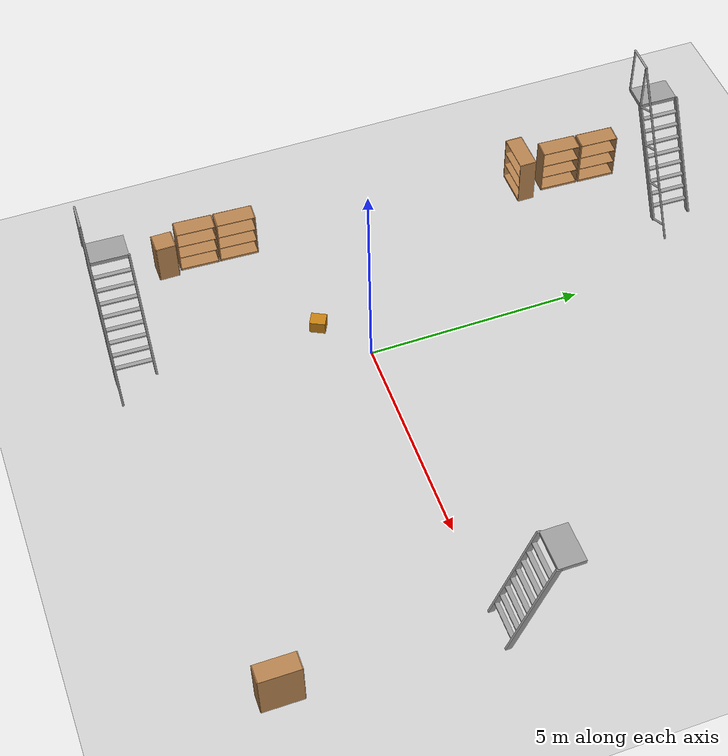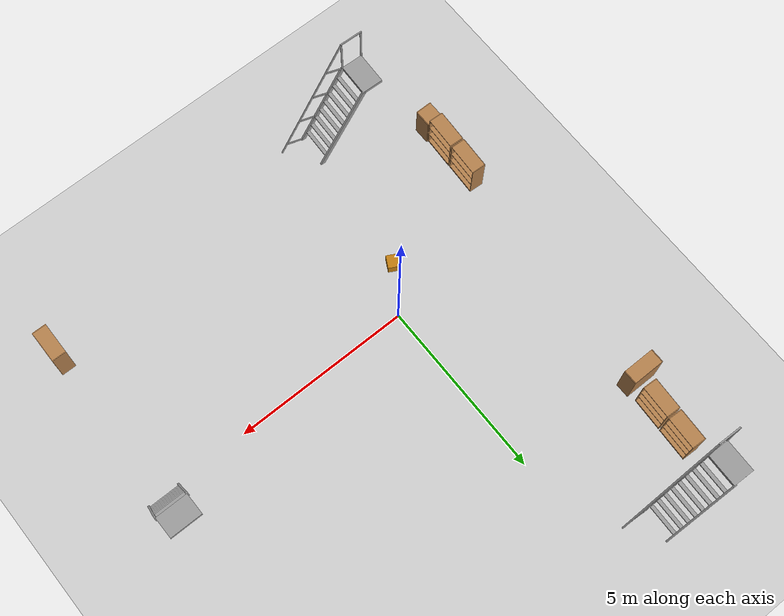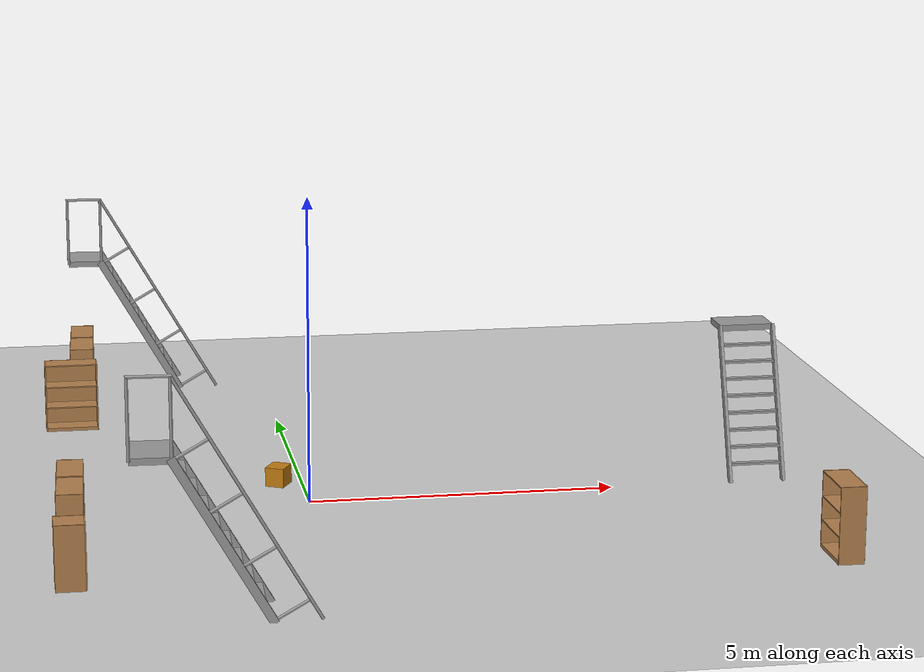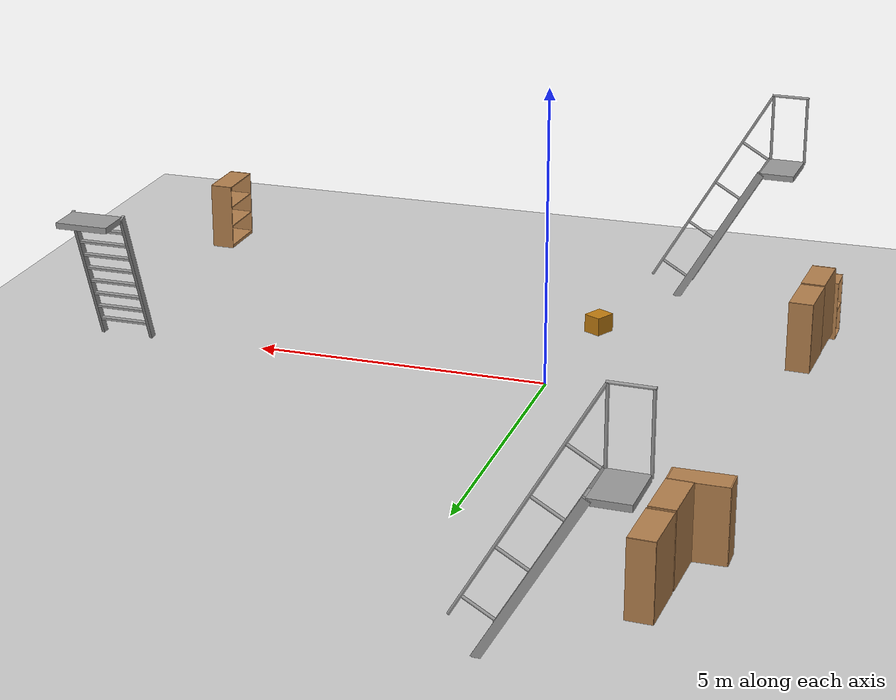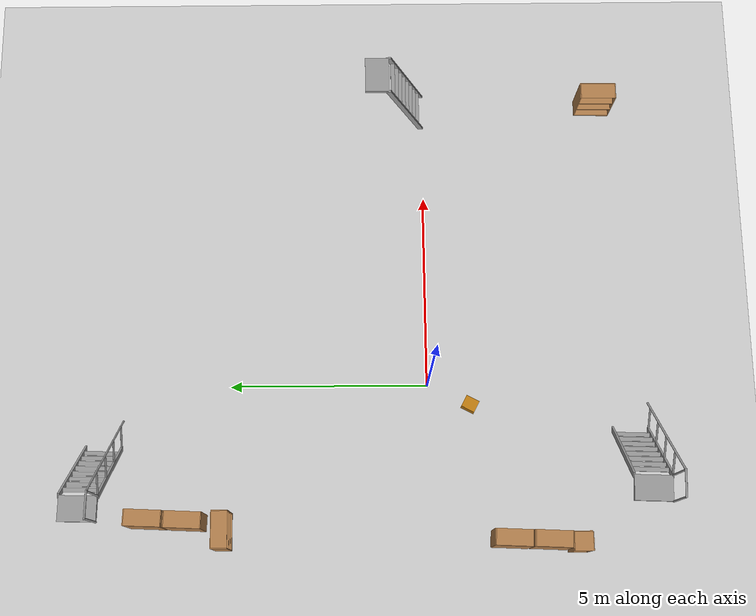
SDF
<sdf version="1.7">
 <world name="default">
  <light name="sun" type="directional">
   <pose>0 0 10 0 -0 0</pose>
   <diffuse>0.8 0.8 0.8 1</diffuse>
   <specular>0.2 0.2 0.2 1</specular>
   <attenuation>
    <range>1000</range>
    <constant>0.9</constant>
    <linear>0.01</linear>
    <quadratic>0.001</quadratic>
   </attenuation>
   <direction>-0.5 0.1 -0.9</direction>
   <spot><inner_angle>0</inner_angle><outer_angle>0</outer_angle><falloff>0</falloff></spot>
  </light>
  <model name="ground_plane">
   <static>1</static>
   <link name="link">
    <collision name="collision">
     <geometry><plane><normal>0 0 1</normal><size>100 100</size></plane></geometry>
     <surface>
      <contact><collide_bitmask>65535</collide_bitmask></contact>
      <friction><ode><mu>100</mu><mu2>50</mu2></ode></friction>
     </surface>
    </collision>
    <visual name="visual">
     <cast_shadows>0</cast_shadows>
     <geometry><plane><normal>0 0 1</normal><size>100 100</size></plane></geometry>
     <material>
      <script><uri>file://media/materials/scripts/gazebo.material</uri><name>Gazebo/Grey</name></script>
     </material>
    </visual>
   </link>
  </model>
  <gravity>0 0 -9.8</gravity>
  <magnetic_field>6e-06 2.3e-05 -4.2e-05</magnetic_field>
  <atmosphere type="adiabatic"/>
  <physics type="ode">
   <max_step_size>0.001</max_step_size>
   <real_time_factor>1</real_time_factor>
   <real_time_update_rate>1000</real_time_update_rate>
  </physics>
  <scene><ambient>0.4 0.4 0.4 1</ambient><background>0.7 0.7 0.7 1</background><shadows>1</shadows></scene>
  <spherical_coordinates>
   <surface_model>EARTH_WGS84</surface_model>
   <latitude_deg>0</latitude_deg>
   <longitude_deg>0</longitude_deg>
   <elevation>0</elevation>
   <heading_deg>0</heading_deg>
  </spherical_coordinates>
  <model name="cabinet">
   <static>1</static>
   <link name="cabinet_bottom_plate">
    <inertial>
     <pose>0 0 -1 0 -0 0</pose>
     <inertia><ixx>2.05</ixx><ixy>0</ixy><ixz>0</ixz><iyy>2.05</iyy><iyz>0</iyz><izz>2.05</izz></inertia>
     <mass>25</mass>
    </inertial>
    <collision name="cabinet_bottom_plate_geom">
     <pose>0 0 0.01 0 -0 0</pose>
     <geometry><box><size>0.45 0.45 0.02</size></box></geometry>
    </collision>
    <visual name="cabinet_bottom_plate_geom_visual">
     <pose>0 0 0.01 0 -0 0</pose>
     <geometry><box><size>0.45 0.45 0.02</size></box></geometry>
     <material>
      <script><uri>file://media/materials/scripts/gazebo.material</uri><name>Gazebo/Wood</name></script>
     </material>
    </visual>
    <collision name="cabinet_bottom_plate_geom_cabinet_back_plate">
     <pose>0.235 0 0.51 0 -0 0</pose>
     <geometry><box><size>0.02 0.45 1.02</size></box></geometry>
    </collision>
    <visual name="cabinet_bottom_plate_geom_cabinet_back_plate_visual">
     <pose>0.235 0 0.51 0 -0 0</pose>
     <geometry><box><size>0.02 0.45 1.02</size></box></geometry>
     <material>
      <script><uri>file://media/materials/scripts/gazebo.material</uri><name>Gazebo/Wood</name></script>
     </material>
    </visual>
    <collision name="cabinet_bottom_plate_geom_cabinet_left_plate">
     <pose>0 0.235 0.51 0 -0 0</pose>
     <geometry><box><size>0.45 0.02 1.02</size></box></geometry>
    </collision>
    <visual name="cabinet_bottom_plate_geom_cabinet_left_plate_visual">
     <pose>0 0.235 0.51 0 -0 0</pose>
     <geometry><box><size>0.45 0.02 1.02</size></box></geometry>
     <material>
      <script><uri>file://media/materials/scripts/gazebo.material</uri><name>Gazebo/Wood</name></script>
     </material>
    </visual>
    <collision name="cabinet_bottom_plate_geom_cabinet_middle_plate">
     <pose>0 0 0.51 0 -0 0</pose>
     <geometry><box><size>0.45 0.45 0.02</size></box></geometry>
    </collision>
    <visual name="cabinet_bottom_plate_geom_cabinet_middle_plate_visual">
     <pose>0 0 0.51 0 -0 0</pose>
     <geometry><box><size>0.45 0.45 0.02</size></box></geometry>
     <material>
      <script><uri>file://media/materials/scripts/gazebo.material</uri><name>Gazebo/Wood</name></script>
     </material>
    </visual>
    <collision name="cabinet_bottom_plate_geom_cabinet_right_plate">
     <pose>0 -0.235 0.51 0 -0 0</pose>
     <geometry><box><size>0.45 0.02 1.02</size></box></geometry>
    </collision>
    <visual name="cabinet_bottom_plate_geom_cabinet_right_plate_visual">
     <pose>0 -0.235 0.51 0 -0 0</pose>
     <geometry><box><size>0.45 0.02 1.02</size></box></geometry>
     <material>
      <script><uri>file://media/materials/scripts/gazebo.material</uri><name>Gazebo/Wood</name></script>
     </material>
    </visual>
    <collision name="cabinet_bottom_plate_geom_cabinet_top_plate">
     <pose>0 0 1.01 0 -0 0</pose>
     <geometry><box><size>0.45 0.45 0.02</size></box></geometry>
    </collision>
    <visual name="cabinet_bottom_plate_geom_cabinet_top_plate_visual">
     <pose>0 0 1.01 0 -0 0</pose>
     <geometry><box><size>0.45 0.45 0.02</size></box></geometry>
     <material>
      <script><uri>file://media/materials/scripts/gazebo.material</uri><name>Gazebo/Wood</name></script>
     </material>
    </visual>
   </link>
   <pose>-3.98072 -3.63785 0 0 -0 0</pose>
  </model>
  <model name="bookshelf_clone">
   <static>1</static>
   <link name="link">
    <inertial><mass>1</mass></inertial>
    <collision name="back">
     <pose>0 0.005 0.6 0 -0 0</pose>
     <geometry><box><size>0.9 0.01 1.2</size></box></geometry>
    </collision>
    <visual name="visual1">
     <pose>0 0.005 0.6 0 -0 0</pose>
     <geometry><box><size>0.9 0.01 1.2</size></box></geometry>
     <material>
      <script><uri>file://media/materials/scripts/gazebo.material</uri><name>Gazebo/Wood</name></script>
     </material>
    </visual>
    <collision name="left_side">
     <pose>0.45 -0.195 0.6 0 -0 0</pose>
     <geometry><box><size>0.02 0.4 1.2</size></box></geometry>
    </collision>
    <visual name="visual2">
     <pose>0.45 -0.195 0.6 0 -0 0</pose>
     <geometry><box><size>0.02 0.4 1.2</size></box></geometry>
     <material>
      <script><uri>file://media/materials/scripts/gazebo.material</uri><name>Gazebo/Wood</name></script>
     </material>
    </visual>
    <collision name="right_side">
     <pose>-0.45 -0.195 0.6 0 -0 0</pose>
     <geometry><box><size>0.02 0.4 1.2</size></box></geometry>
    </collision>
    <visual name="visual3">
     <pose>-0.45 -0.195 0.6 0 -0 0</pose>
     <geometry><box><size>0.02 0.4 1.2</size></box></geometry>
     <material>
      <script><uri>file://media/materials/scripts/gazebo.material</uri><name>Gazebo/Wood</name></script>
     </material>
    </visual>
    <collision name="bottom">
     <pose>0 -0.195 0.03 0 -0 0</pose>
     <geometry><box><size>0.88 0.4 0.06</size></box></geometry>
    </collision>
    <visual name="visual4">
     <pose>0 -0.195 0.03 0 -0 0</pose>
     <geometry><box><size>0.88 0.4 0.06</size></box></geometry>
     <material>
      <script><uri>file://media/materials/scripts/gazebo.material</uri><name>Gazebo/Wood</name></script>
     </material>
    </visual>
    <collision name="top">
     <pose>0 -0.195 1.19 0 -0 0</pose>
     <geometry><box><size>0.88 0.4 0.02</size></box></geometry>
    </collision>
    <visual name="visual5">
     <pose>0 -0.195 1.19 0 -0 0</pose>
     <geometry><box><size>0.88 0.4 0.02</size></box></geometry>
     <material>
      <script><uri>file://media/materials/scripts/gazebo.material</uri><name>Gazebo/Wood</name></script>
     </material>
    </visual>
    <collision name="low_shelf">
     <pose>0 -0.195 0.43 0 -0 0</pose>
     <geometry><box><size>0.88 0.4 0.02</size></box></geometry>
    </collision>
    <visual name="visual6">
     <pose>0 -0.195 0.43 0 -0 0</pose>
     <geometry><box><size>0.88 0.4 0.02</size></box></geometry>
     <material>
      <script><uri>file://media/materials/scripts/gazebo.material</uri><name>Gazebo/Wood</name></script>
     </material>
    </visual>
    <collision name="high_shelf">
     <pose>0 -0.195 0.8 0 -0 0</pose>
     <geometry><box><size>0.88 0.4 0.02</size></box></geometry>
    </collision>
    <visual name="visual7">
     <pose>0 -0.195 0.8 0 -0 0</pose>
     <geometry><box><size>0.88 0.4 0.02</size></box></geometry>
     <material>
      <script><uri>file://media/materials/scripts/gazebo.material</uri><name>Gazebo/Wood</name></script>
     </material>
    </visual>
   </link>
   <pose>-3.59991 5.99172 0.120777 0 -0 1.52399</pose>
  </model>
  <model name="bookshelf_clone_0">
   <static>1</static>
   <link name="link">
    <inertial><mass>1</mass></inertial>
    <collision name="back">
     <pose>0 0.005 0.6 0 -0 0</pose>
     <geometry><box><size>0.9 0.01 1.2</size></box></geometry>
    </collision>
    <visual name="visual1">
     <pose>0 0.005 0.6 0 -0 0</pose>
     <geometry><box><size>0.9 0.01 1.2</size></box></geometry>
     <material>
      <script><uri>file://media/materials/scripts/gazebo.material</uri><name>Gazebo/Wood</name></script>
     </material>
    </visual>
    <collision name="left_side">
     <pose>0.45 -0.195 0.6 0 -0 0</pose>
     <geometry><box><size>0.02 0.4 1.2</size></box></geometry>
    </collision>
    <visual name="visual2">
     <pose>0.45 -0.195 0.6 0 -0 0</pose>
     <geometry><box><size>0.02 0.4 1.2</size></box></geometry>
     <material>
      <script><uri>file://media/materials/scripts/gazebo.material</uri><name>Gazebo/Wood</name></script>
     </material>
    </visual>
    <collision name="right_side">
     <pose>-0.45 -0.195 0.6 0 -0 0</pose>
     <geometry><box><size>0.02 0.4 1.2</size></box></geometry>
    </collision>
    <visual name="visual3">
     <pose>-0.45 -0.195 0.6 0 -0 0</pose>
     <geometry><box><size>0.02 0.4 1.2</size></box></geometry>
     <material>
      <script><uri>file://media/materials/scripts/gazebo.material</uri><name>Gazebo/Wood</name></script>
     </material>
    </visual>
    <collision name="bottom">
     <pose>0 -0.195 0.03 0 -0 0</pose>
     <geometry><box><size>0.88 0.4 0.06</size></box></geometry>
    </collision>
    <visual name="visual4">
     <pose>0 -0.195 0.03 0 -0 0</pose>
     <geometry><box><size>0.88 0.4 0.06</size></box></geometry>
     <material>
      <script><uri>file://media/materials/scripts/gazebo.material</uri><name>Gazebo/Wood</name></script>
     </material>
    </visual>
    <collision name="top">
     <pose>0 -0.195 1.19 0 -0 0</pose>
     <geometry><box><size>0.88 0.4 0.02</size></box></geometry>
    </collision>
    <visual name="visual5">
     <pose>0 -0.195 1.19 0 -0 0</pose>
     <geometry><box><size>0.88 0.4 0.02</size></box></geometry>
     <material>
      <script><uri>file://media/materials/scripts/gazebo.material</uri><name>Gazebo/Wood</name></script>
     </material>
    </visual>
    <collision name="low_shelf">
     <pose>0 -0.195 0.43 0 -0 0</pose>
     <geometry><box><size>0.88 0.4 0.02</size></box></geometry>
    </collision>
    <visual name="visual6">
     <pose>0 -0.195 0.43 0 -0 0</pose>
     <geometry><box><size>0.88 0.4 0.02</size></box></geometry>
     <material>
      <script><uri>file://media/materials/scripts/gazebo.material</uri><name>Gazebo/Wood</name></script>
     </material>
    </visual>
    <collision name="high_shelf">
     <pose>0 -0.195 0.8 0 -0 0</pose>
     <geometry><box><size>0.88 0.4 0.02</size></box></geometry>
    </collision>
    <visual name="visual7">
     <pose>0 -0.195 0.8 0 -0 0</pose>
     <geometry><box><size>0.88 0.4 0.02</size></box></geometry>
     <material>
      <script><uri>file://media/materials/scripts/gazebo.material</uri><name>Gazebo/Wood</name></script>
     </material>
    </visual>
   </link>
   <pose>-3.55264 6.9466 0.120777 0 -0 1.52399</pose>
  </model>
  <model name="bookshelf_clone_1">
   <static>1</static>
   <link name="link">
    <inertial><mass>1</mass></inertial>
    <collision name="back">
     <pose>0 0.005 0.6 0 -0 0</pose>
     <geometry><box><size>0.9 0.01 1.2</size></box></geometry>
    </collision>
    <visual name="visual1">
     <pose>0 0.005 0.6 0 -0 0</pose>
     <geometry><box><size>0.9 0.01 1.2</size></box></geometry>
     <material>
      <script><uri>file://media/materials/scripts/gazebo.material</uri><name>Gazebo/Wood</name></script>
     </material>
    </visual>
    <collision name="left_side">
     <pose>0.45 -0.195 0.6 0 -0 0</pose>
     <geometry><box><size>0.02 0.4 1.2</size></box></geometry>
    </collision>
    <visual name="visual2">
     <pose>0.45 -0.195 0.6 0 -0 0</pose>
     <geometry><box><size>0.02 0.4 1.2</size></box></geometry>
     <material>
      <script><uri>file://media/materials/scripts/gazebo.material</uri><name>Gazebo/Wood</name></script>
     </material>
    </visual>
    <collision name="right_side">
     <pose>-0.45 -0.195 0.6 0 -0 0</pose>
     <geometry><box><size>0.02 0.4 1.2</size></box></geometry>
    </collision>
    <visual name="visual3">
     <pose>-0.45 -0.195 0.6 0 -0 0</pose>
     <geometry><box><size>0.02 0.4 1.2</size></box></geometry>
     <material>
      <script><uri>file://media/materials/scripts/gazebo.material</uri><name>Gazebo/Wood</name></script>
     </material>
    </visual>
    <collision name="bottom">
     <pose>0 -0.195 0.03 0 -0 0</pose>
     <geometry><box><size>0.88 0.4 0.06</size></box></geometry>
    </collision>
    <visual name="visual4">
     <pose>0 -0.195 0.03 0 -0 0</pose>
     <geometry><box><size>0.88 0.4 0.06</size></box></geometry>
     <material>
      <script><uri>file://media/materials/scripts/gazebo.material</uri><name>Gazebo/Wood</name></script>
     </material>
    </visual>
    <collision name="top">
     <pose>0 -0.195 1.19 0 -0 0</pose>
     <geometry><box><size>0.88 0.4 0.02</size></box></geometry>
    </collision>
    <visual name="visual5">
     <pose>0 -0.195 1.19 0 -0 0</pose>
     <geometry><box><size>0.88 0.4 0.02</size></box></geometry>
     <material>
      <script><uri>file://media/materials/scripts/gazebo.material</uri><name>Gazebo/Wood</name></script>
     </material>
    </visual>
    <collision name="low_shelf">
     <pose>0 -0.195 0.43 0 -0 0</pose>
     <geometry><box><size>0.88 0.4 0.02</size></box></geometry>
    </collision>
    <visual name="visual6">
     <pose>0 -0.195 0.43 0 -0 0</pose>
     <geometry><box><size>0.88 0.4 0.02</size></box></geometry>
     <material>
      <script><uri>file://media/materials/scripts/gazebo.material</uri><name>Gazebo/Wood</name></script>
     </material>
    </visual>
    <collision name="high_shelf">
     <pose>0 -0.195 0.8 0 -0 0</pose>
     <geometry><box><size>0.88 0.4 0.02</size></box></geometry>
    </collision>
    <visual name="visual7">
     <pose>0 -0.195 0.8 0 -0 0</pose>
     <geometry><box><size>0.88 0.4 0.02</size></box></geometry>
     <material>
      <script><uri>file://media/materials/scripts/gazebo.material</uri><name>Gazebo/Wood</name></script>
     </material>
    </visual>
   </link>
   <pose>-4.12272 -2.8839 0.120777 0 -0 1.52399</pose>
  </model>
  <model name="bookshelf_clone_2">
   <static>1</static>
   <link name="link">
    <inertial><mass>1</mass></inertial>
    <collision name="back">
     <pose>0 0.005 0.6 0 -0 0</pose>
     <geometry><box><size>0.9 0.01 1.2</size></box></geometry>
    </collision>
    <visual name="visual1">
     <pose>0 0.005 0.6 0 -0 0</pose>
     <geometry><box><size>0.9 0.01 1.2</size></box></geometry>
     <material>
      <script><uri>file://media/materials/scripts/gazebo.material</uri><name>Gazebo/Wood</name></script>
     </material>
    </visual>
    <collision name="left_side">
     <pose>0.45 -0.195 0.6 0 -0 0</pose>
     <geometry><box><size>0.02 0.4 1.2</size></box></geometry>
    </collision>
    <visual name="visual2">
     <pose>0.45 -0.195 0.6 0 -0 0</pose>
     <geometry><box><size>0.02 0.4 1.2</size></box></geometry>
     <material>
      <script><uri>file://media/materials/scripts/gazebo.material</uri><name>Gazebo/Wood</name></script>
     </material>
    </visual>
    <collision name="right_side">
     <pose>-0.45 -0.195 0.6 0 -0 0</pose>
     <geometry><box><size>0.02 0.4 1.2</size></box></geometry>
    </collision>
    <visual name="visual3">
     <pose>-0.45 -0.195 0.6 0 -0 0</pose>
     <geometry><box><size>0.02 0.4 1.2</size></box></geometry>
     <material>
      <script><uri>file://media/materials/scripts/gazebo.material</uri><name>Gazebo/Wood</name></script>
     </material>
    </visual>
    <collision name="bottom">
     <pose>0 -0.195 0.03 0 -0 0</pose>
     <geometry><box><size>0.88 0.4 0.06</size></box></geometry>
    </collision>
    <visual name="visual4">
     <pose>0 -0.195 0.03 0 -0 0</pose>
     <geometry><box><size>0.88 0.4 0.06</size></box></geometry>
     <material>
      <script><uri>file://media/materials/scripts/gazebo.material</uri><name>Gazebo/Wood</name></script>
     </material>
    </visual>
    <collision name="top">
     <pose>0 -0.195 1.19 0 -0 0</pose>
     <geometry><box><size>0.88 0.4 0.02</size></box></geometry>
    </collision>
    <visual name="visual5">
     <pose>0 -0.195 1.19 0 -0 0</pose>
     <geometry><box><size>0.88 0.4 0.02</size></box></geometry>
     <material>
      <script><uri>file://media/materials/scripts/gazebo.material</uri><name>Gazebo/Wood</name></script>
     </material>
    </visual>
    <collision name="low_shelf">
     <pose>0 -0.195 0.43 0 -0 0</pose>
     <geometry><box><size>0.88 0.4 0.02</size></box></geometry>
    </collision>
    <visual name="visual6">
     <pose>0 -0.195 0.43 0 -0 0</pose>
     <geometry><box><size>0.88 0.4 0.02</size></box></geometry>
     <material>
      <script><uri>file://media/materials/scripts/gazebo.material</uri><name>Gazebo/Wood</name></script>
     </material>
    </visual>
    <collision name="high_shelf">
     <pose>0 -0.195 0.8 0 -0 0</pose>
     <geometry><box><size>0.88 0.4 0.02</size></box></geometry>
    </collision>
    <visual name="visual7">
     <pose>0 -0.195 0.8 0 -0 0</pose>
     <geometry><box><size>0.88 0.4 0.02</size></box></geometry>
     <material>
      <script><uri>file://media/materials/scripts/gazebo.material</uri><name>Gazebo/Wood</name></script>
     </material>
    </visual>
   </link>
   <pose>-4.08556 -1.93831 0.120777 0 -0 1.52399</pose>
  </model>
  <model name="bookshelf_0">
   <static>1</static>
   <link name="link">
    <inertial><mass>1</mass></inertial>
    <collision name="back">
     <pose>0 0.005 0.6 0 -0 0</pose>
     <geometry><box><size>0.9 0.01 1.2</size></box></geometry>
    </collision>
    <visual name="visual1">
     <pose>0 0.005 0.6 0 -0 0</pose>
     <geometry><box><size>0.9 0.01 1.2</size></box></geometry>
     <material>
      <script><uri>file://media/materials/scripts/gazebo.material</uri><name>Gazebo/Wood</name></script>
     </material>
    </visual>
    <collision name="left_side">
     <pose>0.45 -0.195 0.6 0 -0 0</pose>
     <geometry><box><size>0.02 0.4 1.2</size></box></geometry>
    </collision>
    <visual name="visual2">
     <pose>0.45 -0.195 0.6 0 -0 0</pose>
     <geometry><box><size>0.02 0.4 1.2</size></box></geometry>
     <material>
      <script><uri>file://media/materials/scripts/gazebo.material</uri><name>Gazebo/Wood</name></script>
     </material>
    </visual>
    <collision name="right_side">
     <pose>-0.45 -0.195 0.6 0 -0 0</pose>
     <geometry><box><size>0.02 0.4 1.2</size></box></geometry>
    </collision>
    <visual name="visual3">
     <pose>-0.45 -0.195 0.6 0 -0 0</pose>
     <geometry><box><size>0.02 0.4 1.2</size></box></geometry>
     <material>
      <script><uri>file://media/materials/scripts/gazebo.material</uri><name>Gazebo/Wood</name></script>
     </material>
    </visual>
    <collision name="bottom">
     <pose>0 -0.195 0.03 0 -0 0</pose>
     <geometry><box><size>0.88 0.4 0.06</size></box></geometry>
    </collision>
    <visual name="visual4">
     <pose>0 -0.195 0.03 0 -0 0</pose>
     <geometry><box><size>0.88 0.4 0.06</size></box></geometry>
     <material>
      <script><uri>file://media/materials/scripts/gazebo.material</uri><name>Gazebo/Wood</name></script>
     </material>
    </visual>
    <collision name="top">
     <pose>0 -0.195 1.19 0 -0 0</pose>
     <geometry><box><size>0.88 0.4 0.02</size></box></geometry>
    </collision>
    <visual name="visual5">
     <pose>0 -0.195 1.19 0 -0 0</pose>
     <geometry><box><size>0.88 0.4 0.02</size></box></geometry>
     <material>
      <script><uri>file://media/materials/scripts/gazebo.material</uri><name>Gazebo/Wood</name></script>
     </material>
    </visual>
    <collision name="low_shelf">
     <pose>0 -0.195 0.43 0 -0 0</pose>
     <geometry><box><size>0.88 0.4 0.02</size></box></geometry>
    </collision>
    <visual name="visual6">
     <pose>0 -0.195 0.43 0 -0 0</pose>
     <geometry><box><size>0.88 0.4 0.02</size></box></geometry>
     <material>
      <script><uri>file://media/materials/scripts/gazebo.material</uri><name>Gazebo/Wood</name></script>
     </material>
    </visual>
    <collision name="high_shelf">
     <pose>0 -0.195 0.8 0 -0 0</pose>
     <geometry><box><size>0.88 0.4 0.02</size></box></geometry>
    </collision>
    <visual name="visual7">
     <pose>0 -0.195 0.8 0 -0 0</pose>
     <geometry><box><size>0.88 0.4 0.02</size></box></geometry>
     <material>
      <script><uri>file://media/materials/scripts/gazebo.material</uri><name>Gazebo/Wood</name></script>
     </material>
    </visual>
   </link>
   <pose>7.66694 -4.52691 0.171936 0 0 -1.5815</pose>
  </model>
  <model name="ladder_70deg_0rails_clone_clone">
   <static>1</static>
   <link name="step0">
    <pose>0 0.097059 0.266667 0 -0 0</pose>
    <inertial>
     <mass>9.75482</mass>
     <inertia>
      <ixx>0.00957124</ixx>
      <iyy>0.65963</iyy>
      <izz>0.666842</izz>
      <ixy>0</ixy>
      <ixz>0</ixz>
      <iyz>0</iyz>
     </inertia>
    </inertial>
    <collision name="collision"><geometry><box><size>0.9 0.1016 0.0381</size></box></geometry></collision>
    <visual name="visual">
     <geometry><box><size>0.9 0.1016 0.0381</size></box></geometry>
     <material>
      <script><uri>file://media/materials/scripts/gazebo.material</uri><name>Gazebo/Grey</name></script>
     </material>
    </visual>
   </link>
   <link name="step1">
    <pose>0 0.194117 0.533333 0 -0 0</pose>
    <inertial>
     <mass>9.75482</mass>
     <inertia>
      <ixx>0.00957124</ixx>
      <iyy>0.65963</iyy>
      <izz>0.666842</izz>
      <ixy>0</ixy>
      <ixz>0</ixz>
      <iyz>0</iyz>
     </inertia>
    </inertial>
    <collision name="collision"><geometry><box><size>0.9 0.1016 0.0381</size></box></geometry></collision>
    <visual name="visual">
     <geometry><box><size>0.9 0.1016 0.0381</size></box></geometry>
     <material>
      <script><uri>file://media/materials/scripts/gazebo.material</uri><name>Gazebo/Grey</name></script>
     </material>
    </visual>
   </link>
   <link name="step2">
    <pose>0 0.291176 0.8 0 -0 0</pose>
    <inertial>
     <mass>9.75482</mass>
     <inertia>
      <ixx>0.00957124</ixx>
      <iyy>0.65963</iyy>
      <izz>0.666842</izz>
      <ixy>0</ixy>
      <ixz>0</ixz>
      <iyz>0</iyz>
     </inertia>
    </inertial>
    <collision name="collision"><geometry><box><size>0.9 0.1016 0.0381</size></box></geometry></collision>
    <visual name="visual">
     <geometry><box><size>0.9 0.1016 0.0381</size></box></geometry>
     <material>
      <script><uri>file://media/materials/scripts/gazebo.material</uri><name>Gazebo/Grey</name></script>
     </material>
    </visual>
   </link>
   <link name="step3">
    <pose>0 0.388235 1.06667 0 -0 0</pose>
    <inertial>
     <mass>9.75482</mass>
     <inertia>
      <ixx>0.00957124</ixx>
      <iyy>0.65963</iyy>
      <izz>0.666842</izz>
      <ixy>0</ixy>
      <ixz>0</ixz>
      <iyz>0</iyz>
     </inertia>
    </inertial>
    <collision name="collision"><geometry><box><size>0.9 0.1016 0.0381</size></box></geometry></collision>
    <visual name="visual">
     <geometry><box><size>0.9 0.1016 0.0381</size></box></geometry>
     <material>
      <script><uri>file://media/materials/scripts/gazebo.material</uri><name>Gazebo/Grey</name></script>
     </material>
    </visual>
   </link>
   <link name="step4">
    <pose>0 0.485294 1.33333 0 -0 0</pose>
    <inertial>
     <mass>9.75482</mass>
     <inertia>
      <ixx>0.00957124</ixx>
      <iyy>0.65963</iyy>
      <izz>0.666842</izz>
      <ixy>0</ixy>
      <ixz>0</ixz>
      <iyz>0</iyz>
     </inertia>
    </inertial>
    <collision name="collision"><geometry><box><size>0.9 0.1016 0.0381</size></box></geometry></collision>
    <visual name="visual">
     <geometry><box><size>0.9 0.1016 0.0381</size></box></geometry>
     <material>
      <script><uri>file://media/materials/scripts/gazebo.material</uri><name>Gazebo/Grey</name></script>
     </material>
    </visual>
   </link>
   <link name="step5">
    <pose>0 0.582352 1.6 0 -0 0</pose>
    <inertial>
     <mass>9.75482</mass>
     <inertia>
      <ixx>0.00957124</ixx>
      <iyy>0.65963</iyy>
      <izz>0.666842</izz>
      <ixy>0</ixy>
      <ixz>0</ixz>
      <iyz>0</iyz>
     </inertia>
    </inertial>
    <collision name="collision"><geometry><box><size>0.9 0.1016 0.0381</size></box></geometry></collision>
    <visual name="visual">
     <geometry><box><size>0.9 0.1016 0.0381</size></box></geometry>
     <material>
      <script><uri>file://media/materials/scripts/gazebo.material</uri><name>Gazebo/Grey</name></script>
     </material>
    </visual>
   </link>
   <link name="step6">
    <pose>0 0.679411 1.86667 0 -0 0</pose>
    <inertial>
     <mass>9.75482</mass>
     <inertia>
      <ixx>0.00957124</ixx>
      <iyy>0.65963</iyy>
      <izz>0.666842</izz>
      <ixy>0</ixy>
      <ixz>0</ixz>
      <iyz>0</iyz>
     </inertia>
    </inertial>
    <collision name="collision"><geometry><box><size>0.9 0.1016 0.0381</size></box></geometry></collision>
    <visual name="visual">
     <geometry><box><size>0.9 0.1016 0.0381</size></box></geometry>
     <material>
      <script><uri>file://media/materials/scripts/gazebo.material</uri><name>Gazebo/Grey</name></script>
     </material>
    </visual>
   </link>
   <link name="step7">
    <pose>0 0.77647 2.13333 0 -0 0</pose>
    <inertial>
     <mass>9.75482</mass>
     <inertia>
      <ixx>0.00957124</ixx>
      <iyy>0.65963</iyy>
      <izz>0.666842</izz>
      <ixy>0</ixy>
      <ixz>0</ixz>
      <iyz>0</iyz>
     </inertia>
    </inertial>
    <collision name="collision"><geometry><box><size>0.9 0.1016 0.0381</size></box></geometry></collision>
    <visual name="visual">
     <geometry><box><size>0.9 0.1016 0.0381</size></box></geometry>
     <material>
      <script><uri>file://media/materials/scripts/gazebo.material</uri><name>Gazebo/Grey</name></script>
     </material>
    </visual>
   </link>
   <link name="landing">
    <pose>0 1.17353 2.4 0 -0 0</pose>
    <inertial>
     <mass>57.6072</mass>
     <inertia><ixx>1.73518</ixx><iyy>3.89545</iyy><izz>5.6167</izz><ixy>0</ixy><ixz>0</ixz><iyz>0</iyz></inertia>
    </inertial>
    <collision name="collision"><geometry><box><size>0.9 0.6 0.1016</size></box></geometry></collision>
    <visual name="visual">
     <geometry><box><size>0.9 0.6 0.1016</size></box></geometry>
     <material>
      <script><uri>file://media/materials/scripts/gazebo.material</uri><name>Gazebo/Grey</name></script>
     </material>
    </visual>
   </link>
   <link name="left_side_wall">
    <pose>-0.45 0.436764 1.2 1.22173 -0 0</pose>
    <collision name="collision"><geometry><box><size>0.0508 2.63403 0.13</size></box></geometry></collision>
    <visual name="visual">
     <geometry><box><size>0.0508 2.63403 0.13</size></box></geometry>
     <material>
      <script><uri>file://media/materials/scripts/gazebo.material</uri><name>Gazebo/Grey</name></script>
     </material>
    </visual>
   </link>
   <link name="right_side_wall">
    <pose>0.45 0.436764 1.2 1.22173 -0 0</pose>
    <collision name="collision"><geometry><box><size>0.0508 2.63403 0.13</size></box></geometry></collision>
    <visual name="visual">
     <geometry><box><size>0.0508 2.63403 0.13</size></box></geometry>
     <material>
      <script><uri>file://media/materials/scripts/gazebo.material</uri><name>Gazebo/Grey</name></script>
     </material>
    </visual>
   </link>
   <pose>7.48209 0.038642 0 0 -0 0</pose>
  </model>
  <model name="ladder_60deg_1rails_clone_0">
   <static>1</static>
   <link name="step0">
    <pose>0 0.15396 0.266667 0 -0 0</pose>
    <inertial>
     <mass>9.75482</mass>
     <inertia>
      <ixx>0.00957124</ixx>
      <iyy>0.65963</iyy>
      <izz>0.666842</izz>
      <ixy>0</ixy>
      <ixz>0</ixz>
      <iyz>0</iyz>
     </inertia>
    </inertial>
    <collision name="collision"><geometry><box><size>0.9 0.1016 0.0381</size></box></geometry></collision>
    <visual name="visual">
     <geometry><box><size>0.9 0.1016 0.0381</size></box></geometry>
     <material>
      <script><uri>file://media/materials/scripts/gazebo.material</uri><name>Gazebo/Grey</name></script>
     </material>
    </visual>
   </link>
   <link name="step1">
    <pose>0 0.30792 0.533333 0 -0 0</pose>
    <inertial>
     <mass>9.75482</mass>
     <inertia>
      <ixx>0.00957124</ixx>
      <iyy>0.65963</iyy>
      <izz>0.666842</izz>
      <ixy>0</ixy>
      <ixz>0</ixz>
      <iyz>0</iyz>
     </inertia>
    </inertial>
    <collision name="collision"><geometry><box><size>0.9 0.1016 0.0381</size></box></geometry></collision>
    <visual name="visual">
     <geometry><box><size>0.9 0.1016 0.0381</size></box></geometry>
     <material>
      <script><uri>file://media/materials/scripts/gazebo.material</uri><name>Gazebo/Grey</name></script>
     </material>
    </visual>
   </link>
   <link name="step2">
    <pose>0 0.46188 0.8 0 -0 0</pose>
    <inertial>
     <mass>9.75482</mass>
     <inertia>
      <ixx>0.00957124</ixx>
      <iyy>0.65963</iyy>
      <izz>0.666842</izz>
      <ixy>0</ixy>
      <ixz>0</ixz>
      <iyz>0</iyz>
     </inertia>
    </inertial>
    <collision name="collision"><geometry><box><size>0.9 0.1016 0.0381</size></box></geometry></collision>
    <visual name="visual">
     <geometry><box><size>0.9 0.1016 0.0381</size></box></geometry>
     <material>
      <script><uri>file://media/materials/scripts/gazebo.material</uri><name>Gazebo/Grey</name></script>
     </material>
    </visual>
   </link>
   <link name="step3">
    <pose>0 0.61584 1.06667 0 -0 0</pose>
    <inertial>
     <mass>9.75482</mass>
     <inertia>
      <ixx>0.00957124</ixx>
      <iyy>0.65963</iyy>
      <izz>0.666842</izz>
      <ixy>0</ixy>
      <ixz>0</ixz>
      <iyz>0</iyz>
     </inertia>
    </inertial>
    <collision name="collision"><geometry><box><size>0.9 0.1016 0.0381</size></box></geometry></collision>
    <visual name="visual">
     <geometry><box><size>0.9 0.1016 0.0381</size></box></geometry>
     <material>
      <script><uri>file://media/materials/scripts/gazebo.material</uri><name>Gazebo/Grey</name></script>
     </material>
    </visual>
   </link>
   <link name="step4">
    <pose>0 0.7698 1.33333 0 -0 0</pose>
    <inertial>
     <mass>9.75482</mass>
     <inertia>
      <ixx>0.00957124</ixx>
      <iyy>0.65963</iyy>
      <izz>0.666842</izz>
      <ixy>0</ixy>
      <ixz>0</ixz>
      <iyz>0</iyz>
     </inertia>
    </inertial>
    <collision name="collision"><geometry><box><size>0.9 0.1016 0.0381</size></box></geometry></collision>
    <visual name="visual">
     <geometry><box><size>0.9 0.1016 0.0381</size></box></geometry>
     <material>
      <script><uri>file://media/materials/scripts/gazebo.material</uri><name>Gazebo/Grey</name></script>
     </material>
    </visual>
   </link>
   <link name="step5">
    <pose>0 0.92376 1.6 0 -0 0</pose>
    <inertial>
     <mass>9.75482</mass>
     <inertia>
      <ixx>0.00957124</ixx>
      <iyy>0.65963</iyy>
      <izz>0.666842</izz>
      <ixy>0</ixy>
      <ixz>0</ixz>
      <iyz>0</iyz>
     </inertia>
    </inertial>
    <collision name="collision"><geometry><box><size>0.9 0.1016 0.0381</size></box></geometry></collision>
    <visual name="visual">
     <geometry><box><size>0.9 0.1016 0.0381</size></box></geometry>
     <material>
      <script><uri>file://media/materials/scripts/gazebo.material</uri><name>Gazebo/Grey</name></script>
     </material>
    </visual>
   </link>
   <link name="step6">
    <pose>0 1.07772 1.86667 0 -0 0</pose>
    <inertial>
     <mass>9.75482</mass>
     <inertia>
      <ixx>0.00957124</ixx>
      <iyy>0.65963</iyy>
      <izz>0.666842</izz>
      <ixy>0</ixy>
      <ixz>0</ixz>
      <iyz>0</iyz>
     </inertia>
    </inertial>
    <collision name="collision"><geometry><box><size>0.9 0.1016 0.0381</size></box></geometry></collision>
    <visual name="visual">
     <geometry><box><size>0.9 0.1016 0.0381</size></box></geometry>
     <material>
      <script><uri>file://media/materials/scripts/gazebo.material</uri><name>Gazebo/Grey</name></script>
     </material>
    </visual>
   </link>
   <link name="step7">
    <pose>0 1.23168 2.13333 0 -0 0</pose>
    <inertial>
     <mass>9.75482</mass>
     <inertia>
      <ixx>0.00957124</ixx>
      <iyy>0.65963</iyy>
      <izz>0.666842</izz>
      <ixy>0</ixy>
      <ixz>0</ixz>
      <iyz>0</iyz>
     </inertia>
    </inertial>
    <collision name="collision"><geometry><box><size>0.9 0.1016 0.0381</size></box></geometry></collision>
    <visual name="visual">
     <geometry><box><size>0.9 0.1016 0.0381</size></box></geometry>
     <material>
      <script><uri>file://media/materials/scripts/gazebo.material</uri><name>Gazebo/Grey</name></script>
     </material>
    </visual>
   </link>
   <link name="landing">
    <pose>0 1.68564 2.4 0 -0 0</pose>
    <inertial>
     <mass>57.6072</mass>
     <inertia><ixx>1.73518</ixx><iyy>3.89545</iyy><izz>5.6167</izz><ixy>0</ixy><ixz>0</ixz><iyz>0</iyz></inertia>
    </inertial>
    <collision name="collision"><geometry><box><size>0.9 0.6 0.1016</size></box></geometry></collision>
    <visual name="visual">
     <geometry><box><size>0.9 0.6 0.1016</size></box></geometry>
     <material>
      <script><uri>file://media/materials/scripts/gazebo.material</uri><name>Gazebo/Grey</name></script>
     </material>
    </visual>
   </link>
   <link name="left_side_wall">
    <pose>-0.45 0.69282 1.2 1.0472 -0 0</pose>
    <collision name="collision"><geometry><box><size>0.0508 2.85128 0.13</size></box></geometry></collision>
    <visual name="visual">
     <geometry><box><size>0.0508 2.85128 0.13</size></box></geometry>
     <material>
      <script><uri>file://media/materials/scripts/gazebo.material</uri><name>Gazebo/Grey</name></script>
     </material>
    </visual>
   </link>
   <link name="right_side_wall">
    <pose>0.45 0.69282 1.2 1.0472 -0 0</pose>
    <collision name="collision"><geometry><box><size>0.0508 2.85128 0.13</size></box></geometry></collision>
    <visual name="visual">
     <geometry><box><size>0.0508 2.85128 0.13</size></box></geometry>
     <material>
      <script><uri>file://media/materials/scripts/gazebo.material</uri><name>Gazebo/Grey</name></script>
     </material>
    </visual>
   </link>
   <link name="left_railing_long">
    <pose>-0.45 0.34282 1.80622 -0.523599 0 0</pose>
    <collision name="collision">
     <geometry><cylinder><radius>0.02413</radius><length>4.17128</length></cylinder></geometry>
    </collision>
    <visual name="visual">
     <geometry><cylinder><radius>0.02413</radius><length>4.17128</length></cylinder></geometry>
     <material>
      <script><uri>file://media/materials/scripts/gazebo.material</uri><name>Gazebo/Grey</name></script>
     </material>
    </visual>
   </link>
   <link name="left_railing_upright0">
    <pose>-0.45 -0.274963 0.15875 1.0472 -0 0</pose>
    <collision name="collision">
     <geometry><cylinder><radius>0.02413</radius><length>0.541218</length></cylinder></geometry>
    </collision>
    <visual name="visual">
     <geometry><cylinder><radius>0.02413</radius><length>0.541218</length></cylinder></geometry>
     <material>
      <script><uri>file://media/materials/scripts/gazebo.material</uri><name>Gazebo/Grey</name></script>
     </material>
    </visual>
   </link>
   <link name="left_railing_upright1">
    <pose>-0.45 0.186917 0.95875 1.0472 -0 0</pose>
    <collision name="collision">
     <geometry><cylinder><radius>0.02413</radius><length>0.541218</length></cylinder></geometry>
    </collision>
    <visual name="visual">
     <geometry><cylinder><radius>0.02413</radius><length>0.541218</length></cylinder></geometry>
     <material>
      <script><uri>file://media/materials/scripts/gazebo.material</uri><name>Gazebo/Grey</name></script>
     </material>
    </visual>
   </link>
   <link name="left_railing_upright2">
    <pose>-0.45 0.648797 1.75875 1.0472 -0 0</pose>
    <collision name="collision">
     <geometry><cylinder><radius>0.02413</radius><length>0.541218</length></cylinder></geometry>
    </collision>
    <visual name="visual">
     <geometry><cylinder><radius>0.02413</radius><length>0.541218</length></cylinder></geometry>
     <material>
      <script><uri>file://media/materials/scripts/gazebo.material</uri><name>Gazebo/Grey</name></script>
     </material>
    </visual>
   </link>
   <link name="left_railing_upright3">
    <pose>-0.45 1.11068 2.55875 1.0472 -0 0</pose>
    <collision name="collision">
     <geometry><cylinder><radius>0.02413</radius><length>0.541218</length></cylinder></geometry>
    </collision>
    <visual name="visual">
     <geometry><cylinder><radius>0.02413</radius><length>0.541218</length></cylinder></geometry>
     <material>
      <script><uri>file://media/materials/scripts/gazebo.material</uri><name>Gazebo/Grey</name></script>
     </material>
    </visual>
   </link>
   <link name="left_railing_landing_top">
    <pose>-0.45 1.68564 3.61244 1.5708 -0 0</pose>
    <collision name="collision">
     <geometry><cylinder><radius>0.02413</radius><length>0.64826</length></cylinder></geometry>
    </collision>
    <visual name="visual">
     <geometry><cylinder><radius>0.02413</radius><length>0.64826</length></cylinder></geometry>
     <material>
      <script><uri>file://media/materials/scripts/gazebo.material</uri><name>Gazebo/Grey</name></script>
     </material>
    </visual>
   </link>
   <link name="left_railing_landing_upright_0">
    <pose>-0.45 1.38564 3.00622 0 -0 0</pose>
    <collision name="collision">
     <geometry><cylinder><radius>0.02413</radius><length>1.21244</length></cylinder></geometry>
    </collision>
    <visual name="visual">
     <geometry><cylinder><radius>0.02413</radius><length>1.21244</length></cylinder></geometry>
     <material>
      <script><uri>file://media/materials/scripts/gazebo.material</uri><name>Gazebo/Grey</name></script>
     </material>
    </visual>
   </link>
   <link name="left_railing_landing_upright_1">
    <pose>-0.45 1.98564 3.00622 0 -0 0</pose>
    <collision name="collision">
     <geometry><cylinder><radius>0.02413</radius><length>1.21244</length></cylinder></geometry>
    </collision>
    <visual name="visual">
     <geometry><cylinder><radius>0.02413</radius><length>1.21244</length></cylinder></geometry>
     <material>
      <script><uri>file://media/materials/scripts/gazebo.material</uri><name>Gazebo/Grey</name></script>
     </material>
    </visual>
   </link>
   <pose>-1.53577 8.17979 0 0 -0 1.54422</pose>
  </model>
  <model name="ladder_60deg_1rails_clone_clone">
   <static>1</static>
   <link name="step0">
    <pose>0 0.15396 0.266667 0 -0 0</pose>
    <inertial>
     <mass>9.75482</mass>
     <inertia>
      <ixx>0.00957124</ixx>
      <iyy>0.65963</iyy>
      <izz>0.666842</izz>
      <ixy>0</ixy>
      <ixz>0</ixz>
      <iyz>0</iyz>
     </inertia>
    </inertial>
    <collision name="collision"><geometry><box><size>0.9 0.1016 0.0381</size></box></geometry></collision>
    <visual name="visual">
     <geometry><box><size>0.9 0.1016 0.0381</size></box></geometry>
     <material>
      <script><uri>file://media/materials/scripts/gazebo.material</uri><name>Gazebo/Grey</name></script>
     </material>
    </visual>
   </link>
   <link name="step1">
    <pose>0 0.30792 0.533333 0 -0 0</pose>
    <inertial>
     <mass>9.75482</mass>
     <inertia>
      <ixx>0.00957124</ixx>
      <iyy>0.65963</iyy>
      <izz>0.666842</izz>
      <ixy>0</ixy>
      <ixz>0</ixz>
      <iyz>0</iyz>
     </inertia>
    </inertial>
    <collision name="collision"><geometry><box><size>0.9 0.1016 0.0381</size></box></geometry></collision>
    <visual name="visual">
     <geometry><box><size>0.9 0.1016 0.0381</size></box></geometry>
     <material>
      <script><uri>file://media/materials/scripts/gazebo.material</uri><name>Gazebo/Grey</name></script>
     </material>
    </visual>
   </link>
   <link name="step2">
    <pose>0 0.46188 0.8 0 -0 0</pose>
    <inertial>
     <mass>9.75482</mass>
     <inertia>
      <ixx>0.00957124</ixx>
      <iyy>0.65963</iyy>
      <izz>0.666842</izz>
      <ixy>0</ixy>
      <ixz>0</ixz>
      <iyz>0</iyz>
     </inertia>
    </inertial>
    <collision name="collision"><geometry><box><size>0.9 0.1016 0.0381</size></box></geometry></collision>
    <visual name="visual">
     <geometry><box><size>0.9 0.1016 0.0381</size></box></geometry>
     <material>
      <script><uri>file://media/materials/scripts/gazebo.material</uri><name>Gazebo/Grey</name></script>
     </material>
    </visual>
   </link>
   <link name="step3">
    <pose>0 0.61584 1.06667 0 -0 0</pose>
    <inertial>
     <mass>9.75482</mass>
     <inertia>
      <ixx>0.00957124</ixx>
      <iyy>0.65963</iyy>
      <izz>0.666842</izz>
      <ixy>0</ixy>
      <ixz>0</ixz>
      <iyz>0</iyz>
     </inertia>
    </inertial>
    <collision name="collision"><geometry><box><size>0.9 0.1016 0.0381</size></box></geometry></collision>
    <visual name="visual">
     <geometry><box><size>0.9 0.1016 0.0381</size></box></geometry>
     <material>
      <script><uri>file://media/materials/scripts/gazebo.material</uri><name>Gazebo/Grey</name></script>
     </material>
    </visual>
   </link>
   <link name="step4">
    <pose>0 0.7698 1.33333 0 -0 0</pose>
    <inertial>
     <mass>9.75482</mass>
     <inertia>
      <ixx>0.00957124</ixx>
      <iyy>0.65963</iyy>
      <izz>0.666842</izz>
      <ixy>0</ixy>
      <ixz>0</ixz>
      <iyz>0</iyz>
     </inertia>
    </inertial>
    <collision name="collision"><geometry><box><size>0.9 0.1016 0.0381</size></box></geometry></collision>
    <visual name="visual">
     <geometry><box><size>0.9 0.1016 0.0381</size></box></geometry>
     <material>
      <script><uri>file://media/materials/scripts/gazebo.material</uri><name>Gazebo/Grey</name></script>
     </material>
    </visual>
   </link>
   <link name="step5">
    <pose>0 0.92376 1.6 0 -0 0</pose>
    <inertial>
     <mass>9.75482</mass>
     <inertia>
      <ixx>0.00957124</ixx>
      <iyy>0.65963</iyy>
      <izz>0.666842</izz>
      <ixy>0</ixy>
      <ixz>0</ixz>
      <iyz>0</iyz>
     </inertia>
    </inertial>
    <collision name="collision"><geometry><box><size>0.9 0.1016 0.0381</size></box></geometry></collision>
    <visual name="visual">
     <geometry><box><size>0.9 0.1016 0.0381</size></box></geometry>
     <material>
      <script><uri>file://media/materials/scripts/gazebo.material</uri><name>Gazebo/Grey</name></script>
     </material>
    </visual>
   </link>
   <link name="step6">
    <pose>0 1.07772 1.86667 0 -0 0</pose>
    <inertial>
     <mass>9.75482</mass>
     <inertia>
      <ixx>0.00957124</ixx>
      <iyy>0.65963</iyy>
      <izz>0.666842</izz>
      <ixy>0</ixy>
      <ixz>0</ixz>
      <iyz>0</iyz>
     </inertia>
    </inertial>
    <collision name="collision"><geometry><box><size>0.9 0.1016 0.0381</size></box></geometry></collision>
    <visual name="visual">
     <geometry><box><size>0.9 0.1016 0.0381</size></box></geometry>
     <material>
      <script><uri>file://media/materials/scripts/gazebo.material</uri><name>Gazebo/Grey</name></script>
     </material>
    </visual>
   </link>
   <link name="step7">
    <pose>0 1.23168 2.13333 0 -0 0</pose>
    <inertial>
     <mass>9.75482</mass>
     <inertia>
      <ixx>0.00957124</ixx>
      <iyy>0.65963</iyy>
      <izz>0.666842</izz>
      <ixy>0</ixy>
      <ixz>0</ixz>
      <iyz>0</iyz>
     </inertia>
    </inertial>
    <collision name="collision"><geometry><box><size>0.9 0.1016 0.0381</size></box></geometry></collision>
    <visual name="visual">
     <geometry><box><size>0.9 0.1016 0.0381</size></box></geometry>
     <material>
      <script><uri>file://media/materials/scripts/gazebo.material</uri><name>Gazebo/Grey</name></script>
     </material>
    </visual>
   </link>
   <link name="landing">
    <pose>0 1.68564 2.4 0 -0 0</pose>
    <inertial>
     <mass>57.6072</mass>
     <inertia><ixx>1.73518</ixx><iyy>3.89545</iyy><izz>5.6167</izz><ixy>0</ixy><ixz>0</ixz><iyz>0</iyz></inertia>
    </inertial>
    <collision name="collision"><geometry><box><size>0.9 0.6 0.1016</size></box></geometry></collision>
    <visual name="visual">
     <geometry><box><size>0.9 0.6 0.1016</size></box></geometry>
     <material>
      <script><uri>file://media/materials/scripts/gazebo.material</uri><name>Gazebo/Grey</name></script>
     </material>
    </visual>
   </link>
   <link name="left_side_wall">
    <pose>-0.45 0.69282 1.2 1.0472 -0 0</pose>
    <collision name="collision"><geometry><box><size>0.0508 2.85128 0.13</size></box></geometry></collision>
    <visual name="visual">
     <geometry><box><size>0.0508 2.85128 0.13</size></box></geometry>
     <material>
      <script><uri>file://media/materials/scripts/gazebo.material</uri><name>Gazebo/Grey</name></script>
     </material>
    </visual>
   </link>
   <link name="right_side_wall">
    <pose>0.45 0.69282 1.2 1.0472 -0 0</pose>
    <collision name="collision"><geometry><box><size>0.0508 2.85128 0.13</size></box></geometry></collision>
    <visual name="visual">
     <geometry><box><size>0.0508 2.85128 0.13</size></box></geometry>
     <material>
      <script><uri>file://media/materials/scripts/gazebo.material</uri><name>Gazebo/Grey</name></script>
     </material>
    </visual>
   </link>
   <link name="left_railing_long">
    <pose>-0.45 0.34282 1.80622 -0.523599 0 0</pose>
    <collision name="collision">
     <geometry><cylinder><radius>0.02413</radius><length>4.17128</length></cylinder></geometry>
    </collision>
    <visual name="visual">
     <geometry><cylinder><radius>0.02413</radius><length>4.17128</length></cylinder></geometry>
     <material>
      <script><uri>file://media/materials/scripts/gazebo.material</uri><name>Gazebo/Grey</name></script>
     </material>
    </visual>
   </link>
   <link name="left_railing_upright0">
    <pose>-0.45 -0.274963 0.15875 1.0472 -0 0</pose>
    <collision name="collision">
     <geometry><cylinder><radius>0.02413</radius><length>0.541218</length></cylinder></geometry>
    </collision>
    <visual name="visual">
     <geometry><cylinder><radius>0.02413</radius><length>0.541218</length></cylinder></geometry>
     <material>
      <script><uri>file://media/materials/scripts/gazebo.material</uri><name>Gazebo/Grey</name></script>
     </material>
    </visual>
   </link>
   <link name="left_railing_upright1">
    <pose>-0.45 0.186917 0.95875 1.0472 -0 0</pose>
    <collision name="collision">
     <geometry><cylinder><radius>0.02413</radius><length>0.541218</length></cylinder></geometry>
    </collision>
    <visual name="visual">
     <geometry><cylinder><radius>0.02413</radius><length>0.541218</length></cylinder></geometry>
     <material>
      <script><uri>file://media/materials/scripts/gazebo.material</uri><name>Gazebo/Grey</name></script>
     </material>
    </visual>
   </link>
   <link name="left_railing_upright2">
    <pose>-0.45 0.648797 1.75875 1.0472 -0 0</pose>
    <collision name="collision">
     <geometry><cylinder><radius>0.02413</radius><length>0.541218</length></cylinder></geometry>
    </collision>
    <visual name="visual">
     <geometry><cylinder><radius>0.02413</radius><length>0.541218</length></cylinder></geometry>
     <material>
      <script><uri>file://media/materials/scripts/gazebo.material</uri><name>Gazebo/Grey</name></script>
     </material>
    </visual>
   </link>
   <link name="left_railing_upright3">
    <pose>-0.45 1.11068 2.55875 1.0472 -0 0</pose>
    <collision name="collision">
     <geometry><cylinder><radius>0.02413</radius><length>0.541218</length></cylinder></geometry>
    </collision>
    <visual name="visual">
     <geometry><cylinder><radius>0.02413</radius><length>0.541218</length></cylinder></geometry>
     <material>
      <script><uri>file://media/materials/scripts/gazebo.material</uri><name>Gazebo/Grey</name></script>
     </material>
    </visual>
   </link>
   <link name="left_railing_landing_top">
    <pose>-0.45 1.68564 3.61244 1.5708 -0 0</pose>
    <collision name="collision">
     <geometry><cylinder><radius>0.02413</radius><length>0.64826</length></cylinder></geometry>
    </collision>
    <visual name="visual">
     <geometry><cylinder><radius>0.02413</radius><length>0.64826</length></cylinder></geometry>
     <material>
      <script><uri>file://media/materials/scripts/gazebo.material</uri><name>Gazebo/Grey</name></script>
     </material>
    </visual>
   </link>
   <link name="left_railing_landing_upright_0">
    <pose>-0.45 1.38564 3.00622 0 -0 0</pose>
    <collision name="collision">
     <geometry><cylinder><radius>0.02413</radius><length>1.21244</length></cylinder></geometry>
    </collision>
    <visual name="visual">
     <geometry><cylinder><radius>0.02413</radius><length>1.21244</length></cylinder></geometry>
     <material>
      <script><uri>file://media/materials/scripts/gazebo.material</uri><name>Gazebo/Grey</name></script>
     </material>
    </visual>
   </link>
   <link name="left_railing_landing_upright_1">
    <pose>-0.45 1.98564 3.00622 0 -0 0</pose>
    <collision name="collision">
     <geometry><cylinder><radius>0.02413</radius><length>1.21244</length></cylinder></geometry>
    </collision>
    <visual name="visual">
     <geometry><cylinder><radius>0.02413</radius><length>1.21244</length></cylinder></geometry>
     <material>
      <script><uri>file://media/materials/scripts/gazebo.material</uri><name>Gazebo/Grey</name></script>
     </material>
    </visual>
   </link>
   <pose>-1.17524 -5.12654 0 0 -0 1.53434</pose>
  </model>
  <model name="bookshelf_clone_3">
   <static>1</static>
   <link name="link">
    <inertial><mass>1</mass></inertial>
    <collision name="back">
     <pose>0 0.005 0.6 0 -0 0</pose>
     <geometry><box><size>0.9 0.01 1.2</size></box></geometry>
    </collision>
    <visual name="visual1">
     <pose>0 0.005 0.6 0 -0 0</pose>
     <geometry><box><size>0.9 0.01 1.2</size></box></geometry>
     <material>
      <script><uri>file://media/materials/scripts/gazebo.material</uri><name>Gazebo/Wood</name></script>
     </material>
    </visual>
    <collision name="left_side">
     <pose>0.45 -0.195 0.6 0 -0 0</pose>
     <geometry><box><size>0.02 0.4 1.2</size></box></geometry>
    </collision>
    <visual name="visual2">
     <pose>0.45 -0.195 0.6 0 -0 0</pose>
     <geometry><box><size>0.02 0.4 1.2</size></box></geometry>
     <material>
      <script><uri>file://media/materials/scripts/gazebo.material</uri><name>Gazebo/Wood</name></script>
     </material>
    </visual>
    <collision name="right_side">
     <pose>-0.45 -0.195 0.6 0 -0 0</pose>
     <geometry><box><size>0.02 0.4 1.2</size></box></geometry>
    </collision>
    <visual name="visual3">
     <pose>-0.45 -0.195 0.6 0 -0 0</pose>
     <geometry><box><size>0.02 0.4 1.2</size></box></geometry>
     <material>
      <script><uri>file://media/materials/scripts/gazebo.material</uri><name>Gazebo/Wood</name></script>
     </material>
    </visual>
    <collision name="bottom">
     <pose>0 -0.195 0.03 0 -0 0</pose>
     <geometry><box><size>0.88 0.4 0.06</size></box></geometry>
    </collision>
    <visual name="visual4">
     <pose>0 -0.195 0.03 0 -0 0</pose>
     <geometry><box><size>0.88 0.4 0.06</size></box></geometry>
     <material>
      <script><uri>file://media/materials/scripts/gazebo.material</uri><name>Gazebo/Wood</name></script>
     </material>
    </visual>
    <collision name="top">
     <pose>0 -0.195 1.19 0 -0 0</pose>
     <geometry><box><size>0.88 0.4 0.02</size></box></geometry>
    </collision>
    <visual name="visual5">
     <pose>0 -0.195 1.19 0 -0 0</pose>
     <geometry><box><size>0.88 0.4 0.02</size></box></geometry>
     <material>
      <script><uri>file://media/materials/scripts/gazebo.material</uri><name>Gazebo/Wood</name></script>
     </material>
    </visual>
    <collision name="low_shelf">
     <pose>0 -0.195 0.43 0 -0 0</pose>
     <geometry><box><size>0.88 0.4 0.02</size></box></geometry>
    </collision>
    <visual name="visual6">
     <pose>0 -0.195 0.43 0 -0 0</pose>
     <geometry><box><size>0.88 0.4 0.02</size></box></geometry>
     <material>
      <script><uri>file://media/materials/scripts/gazebo.material</uri><name>Gazebo/Wood</name></script>
     </material>
    </visual>
    <collision name="high_shelf">
     <pose>0 -0.195 0.8 0 -0 0</pose>
     <geometry><box><size>0.88 0.4 0.02</size></box></geometry>
    </collision>
    <visual name="visual7">
     <pose>0 -0.195 0.8 0 -0 0</pose>
     <geometry><box><size>0.88 0.4 0.02</size></box></geometry>
     <material>
      <script><uri>file://media/materials/scripts/gazebo.material</uri><name>Gazebo/Wood</name></script>
     </material>
    </visual>
   </link>
   <pose>-3.63763 5.30213 0 0 -0 0</pose>
  </model>
  <model name="unit_box_carton">
   <link name="link">
    <inertial>
     <mass>1</mass>
     <inertia>
      <ixx>0.166667</ixx>
      <ixy>0</ixy>
      <ixz>0</ixz>
      <iyy>0.166667</iyy>
      <iyz>0</iyz>
      <izz>0.166667</izz>
     </inertia>
    </inertial>
    <pose>-1.31915 0.943719 1.07859 0 -0 1.08708</pose>
    <visual name="visual">
     <geometry><box><size>0.352541 0.303512 0.304488</size></box></geometry>
     <material>
      <script><name>Gazebo/Grey</name><uri>file://media/materials/scripts/gazebo.material</uri></script>
      <shader type="pixel"><normal_map>__default__</normal_map></shader>
      <ambient>0.757 0.49 0.067 1</ambient>
      <diffuse>0.7 0.7 0.7 1</diffuse>
      <specular>0.01 0.01 0.01 1</specular>
      <emissive>0 0 0 1</emissive>
     </material>
    </visual>
    <collision name="collision">
     <geometry><box><size>0.352541 0.303512 0.304488</size></box></geometry>
     <surface>
      <friction>
       <ode><mu>1</mu><mu2>1</mu2><fdir1>0 0 0</fdir1><slip1>0</slip1><slip2>0</slip2></ode>
       <torsional>
        <coefficient>1</coefficient>
        <patch_radius>0</patch_radius>
        <surface_radius>0</surface_radius>
        <use_patch_radius>1</use_patch_radius>
        <ode><slip>0</slip></ode>
       </torsional>
      </friction>
      <bounce><restitution_coefficient>0</restitution_coefficient><threshold>1e+06</threshold></bounce>
      <contact>
       <collide_without_contact>0</collide_without_contact>
       <collide_without_contact_bitmask>1</collide_without_contact_bitmask>
       <collide_bitmask>1</collide_bitmask>
       <ode>
        <soft_cfm>0</soft_cfm>
        <soft_erp>0.2</soft_erp>
        <kp>1e+13</kp>
        <kd>1</kd>
        <max_vel>0.01</max_vel>
        <min_depth>0</min_depth>
       </ode>
       <bullet>
        <split_impulse>1</split_impulse>
        <split_impulse_penetration_threshold>-0.01</split_impulse_penetration_threshold>
        <soft_cfm>0</soft_cfm>
        <soft_erp>0.2</soft_erp>
        <kp>1e+13</kp>
        <kd>1</kd>
       </bullet>
      </contact>
     </surface>
    </collision>
   </link>
   <static>0</static>
   <pose>0.701157 -1.95657 -0.300168 0.002557 -7.9e-05 0.001051</pose>
  </model>
 </world>
</sdf>
